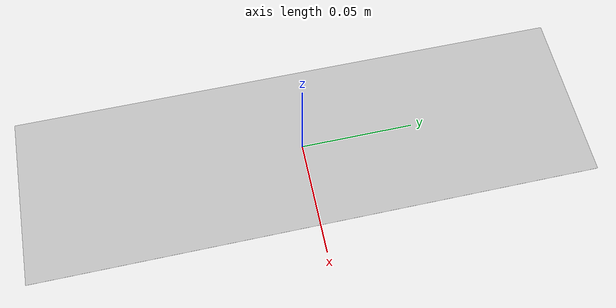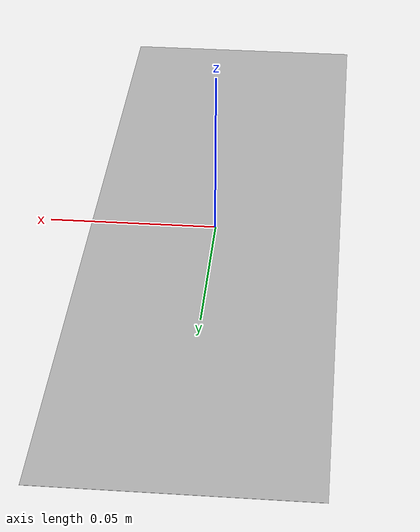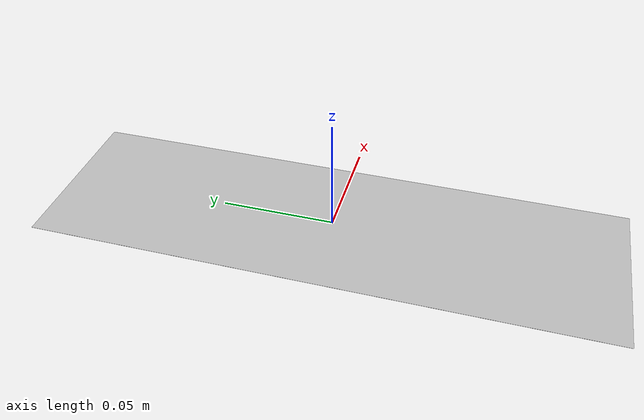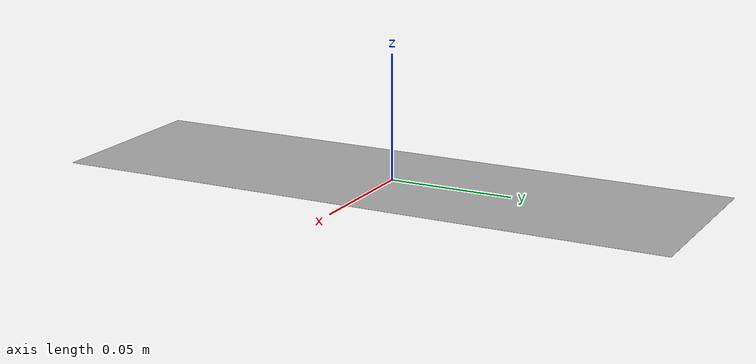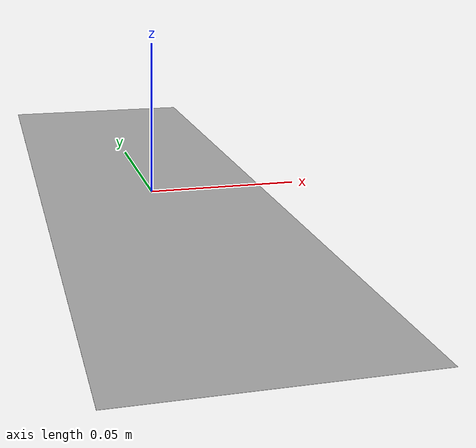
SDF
<?xml version="1.0"?>
<sdf version="1.6">
<model name="yellow line">
  <static>true</static>
    <link name="link_ground">
      <collision name="collision">
        <geometry>
          <plane>
            <normal>0 0 5</normal>
            <size>0.075 0.25</size>
          </plane>
        </geometry>

        <surface>
          <friction>
            <ode>
              <mu>100</mu>
              <mu2>50</mu2>
            </ode>
          </friction>
        </surface>
      </collision>
      <visual name="visual_ground">
        <cast_shadows>false</cast_shadows>
        <geometry>
          <plane>
            <normal>0 0 5</normal>
            <size>0.075 0.25</size>
          </plane>
        </geometry>
        <material>
            <ambient>0.7 0.7 0.7 1</ambient>
            <diffuse>0.7 0.7 0.7 1</diffuse>
            <specular>0.01 0.01 0.01 1</specular>
        </material>
      </visual>
    </link>
  </model>
</sdf>
